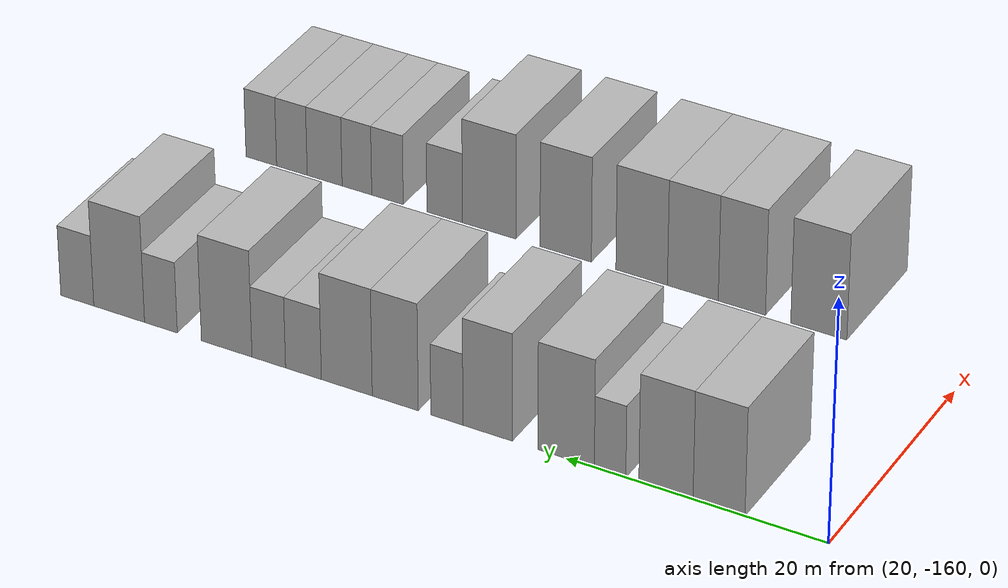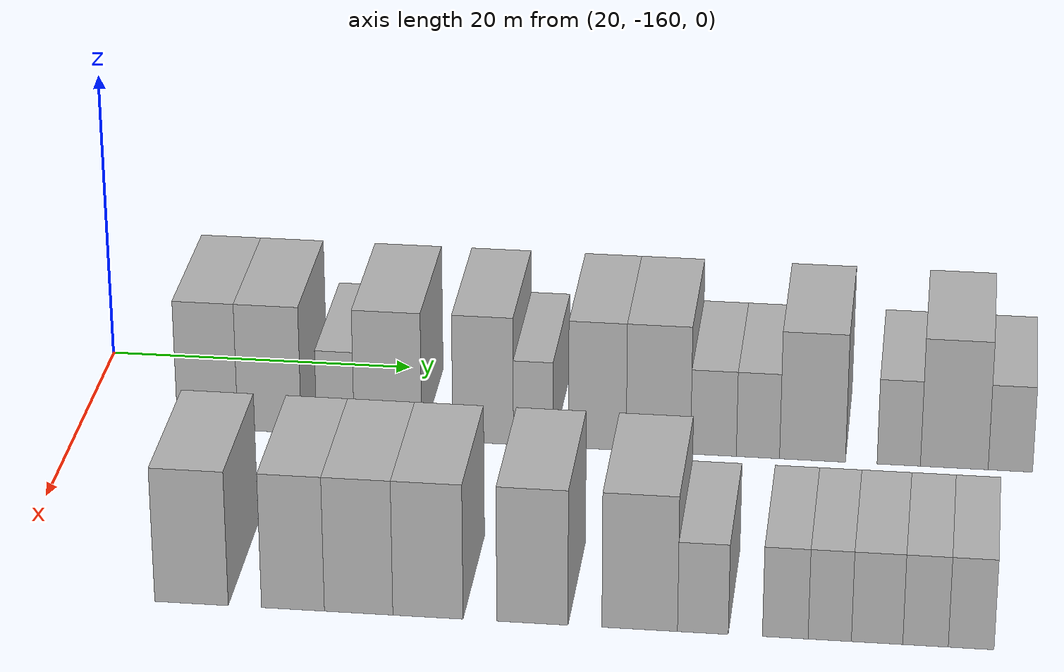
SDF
<sdf version="1.6">
 <world name="default">
  <model name="building_14">
   <static>1</static>
   <pose>25.0000 -151.7200 0 0.000000 0.000000 0.000000</pose>
   <link name="link">
    <pose>0 0 4.50 0 0 0</pose>
    <collision name="collision"><geometry><box><size>10.0000 3.9417 9.0000</size></box></geometry></collision>
    <visual name="visual">
     <cast_shadows>0</cast_shadows>
     <geometry><box><size>10.0000 3.9417 9.0000</size></box></geometry>
     <material>
      <script>
       <uri>model://HANNAS_wall/materials/scripts</uri>
       <uri>model://HANNAS_wall/materials/textures</uri>
       <name>vrc/HANNAS_wall</name>
      </script>
     </material>
    </visual>
   </link>
  </model>
  <model name="building_15">
   <static>1</static>
   <pose>25.0000 -147.6774 0 0.000000 0.000000 0.000000</pose>
   <link name="link">
    <pose>0 0 4.50 0 0 0</pose>
    <collision name="collision"><geometry><box><size>10.0000 4.1435 9.0000</size></box></geometry></collision>
    <visual name="visual">
     <cast_shadows>0</cast_shadows>
     <geometry><box><size>10.0000 4.1435 9.0000</size></box></geometry>
     <material>
      <script>
       <uri>model://HANNAS_wall/materials/scripts</uri>
       <uri>model://HANNAS_wall/materials/textures</uri>
       <name>vrc/HANNAS_wall</name>
      </script>
     </material>
    </visual>
   </link>
  </model>
  <model name="building_16">
   <static>1</static>
   <pose>25.0000 -143.3900 0 0.000000 0.000000 0.000000</pose>
   <link name="link">
    <pose>0 0 3.00 0 0 0</pose>
    <collision name="collision"><geometry><box><size>10.0000 2.4312 6.0000</size></box></geometry></collision>
    <visual name="visual">
     <cast_shadows>0</cast_shadows>
     <geometry><box><size>10.0000 2.4312 6.0000</size></box></geometry>
     <material>
      <script>
       <uri>model://HANNAS_wall/materials/scripts</uri>
       <uri>model://HANNAS_wall/materials/textures</uri>
       <name>vrc/HANNAS_wall</name>
      </script>
     </material>
    </visual>
   </link>
  </model>
  <model name="building_17">
   <static>1</static>
   <pose>25.0000 -139.9825 0 0.000000 0.000000 0.000000</pose>
   <link name="link">
    <pose>0 0 4.50 0 0 0</pose>
    <collision name="collision"><geometry><box><size>10.0000 4.3837 9.0000</size></box></geometry></collision>
    <visual name="visual">
     <cast_shadows>0</cast_shadows>
     <geometry><box><size>10.0000 4.3837 9.0000</size></box></geometry>
     <material>
      <script>
       <uri>model://HANNAS_wall/materials/scripts</uri>
       <uri>model://HANNAS_wall/materials/textures</uri>
       <name>vrc/HANNAS_wall</name>
      </script>
     </material>
    </visual>
   </link>
  </model>
  <model name="building_18">
   <static>1</static>
   <pose>25.0000 -133.8397 0 0.000000 0.000000 0.000000</pose>
   <link name="link">
    <pose>0 0 4.50 0 0 0</pose>
    <collision name="collision"><geometry><box><size>10.0000 3.9020 9.0000</size></box></geometry></collision>
    <visual name="visual">
     <cast_shadows>0</cast_shadows>
     <geometry><box><size>10.0000 3.9020 9.0000</size></box></geometry>
     <material>
      <script>
       <uri>model://HANNAS_wall/materials/scripts</uri>
       <uri>model://HANNAS_wall/materials/textures</uri>
       <name>vrc/HANNAS_wall</name>
      </script>
     </material>
    </visual>
   </link>
  </model>
  <model name="building_19">
   <static>1</static>
   <pose>25.0000 -130.6132 0 0.000000 0.000000 0.000000</pose>
   <link name="link">
    <pose>0 0 3.00 0 0 0</pose>
    <collision name="collision"><geometry><box><size>10.0000 2.5512 6.0000</size></box></geometry></collision>
    <visual name="visual">
     <cast_shadows>0</cast_shadows>
     <geometry><box><size>10.0000 2.5512 6.0000</size></box></geometry>
     <material>
      <script>
       <uri>model://HANNAS_wall/materials/scripts</uri>
       <uri>model://HANNAS_wall/materials/textures</uri>
       <name>vrc/HANNAS_wall</name>
      </script>
     </material>
    </visual>
   </link>
  </model>
  <model name="building_20">
   <static>1</static>
   <pose>25.0000 -126.4945 0 0.000000 0.000000 0.000000</pose>
   <link name="link">
    <pose>0 0 4.50 0 0 0</pose>
    <collision name="collision"><geometry><box><size>10.0000 3.6862 9.0000</size></box></geometry></collision>
    <visual name="visual">
     <cast_shadows>0</cast_shadows>
     <geometry><box><size>10.0000 3.6862 9.0000</size></box></geometry>
     <material>
      <script>
       <uri>model://HANNAS_wall/materials/scripts</uri>
       <uri>model://HANNAS_wall/materials/textures</uri>
       <name>vrc/HANNAS_wall</name>
      </script>
     </material>
    </visual>
   </link>
  </model>
  <model name="building_21">
   <static>1</static>
   <pose>25.0000 -122.5954 0 0.000000 0.000000 0.000000</pose>
   <link name="link">
    <pose>0 0 4.50 0 0 0</pose>
    <collision name="collision"><geometry><box><size>10.0000 4.1119 9.0000</size></box></geometry></collision>
    <visual name="visual">
     <cast_shadows>0</cast_shadows>
     <geometry><box><size>10.0000 4.1119 9.0000</size></box></geometry>
     <material>
      <script>
       <uri>model://HANNAS_wall/materials/scripts</uri>
       <uri>model://HANNAS_wall/materials/textures</uri>
       <name>vrc/HANNAS_wall</name>
      </script>
     </material>
    </visual>
   </link>
  </model>
  <model name="building_22">
   <static>1</static>
   <pose>25.0000 -119.0821 0 0.000000 0.000000 0.000000</pose>
   <link name="link">
    <pose>0 0 3.00 0 0 0</pose>
    <collision name="collision"><geometry><box><size>10.0000 2.9146 6.0000</size></box></geometry></collision>
    <visual name="visual">
     <cast_shadows>0</cast_shadows>
     <geometry><box><size>10.0000 2.9146 6.0000</size></box></geometry>
     <material>
      <script>
       <uri>model://HANNAS_wall/materials/scripts</uri>
       <uri>model://HANNAS_wall/materials/textures</uri>
       <name>vrc/HANNAS_wall</name>
      </script>
     </material>
    </visual>
   </link>
  </model>
  <model name="building_23">
   <static>1</static>
   <pose>25.0000 -116.2512 0 0.000000 0.000000 0.000000</pose>
   <link name="link">
    <pose>0 0 3.00 0 0 0</pose>
    <collision name="collision"><geometry><box><size>10.0000 2.7474 6.0000</size></box></geometry></collision>
    <visual name="visual">
     <cast_shadows>0</cast_shadows>
     <geometry><box><size>10.0000 2.7474 6.0000</size></box></geometry>
     <material>
      <script>
       <uri>model://HANNAS_wall/materials/scripts</uri>
       <uri>model://HANNAS_wall/materials/textures</uri>
       <name>vrc/HANNAS_wall</name>
      </script>
     </material>
    </visual>
   </link>
  </model>
  <model name="building_24">
   <static>1</static>
   <pose>25.0000 -112.7890 0 0.000000 0.000000 0.000000</pose>
   <link name="link">
    <pose>0 0 4.50 0 0 0</pose>
    <collision name="collision"><geometry><box><size>10.0000 4.1770 9.0000</size></box></geometry></collision>
    <visual name="visual">
     <cast_shadows>0</cast_shadows>
     <geometry><box><size>10.0000 4.1770 9.0000</size></box></geometry>
     <material>
      <script>
       <uri>model://HANNAS_wall/materials/scripts</uri>
       <uri>model://HANNAS_wall/materials/textures</uri>
       <name>vrc/HANNAS_wall</name>
      </script>
     </material>
    </visual>
   </link>
  </model>
  <model name="building_25">
   <static>1</static>
   <pose>25.0000 -107.3323 0 0.000000 0.000000 0.000000</pose>
   <link name="link">
    <pose>0 0 3.00 0 0 0</pose>
    <collision name="collision"><geometry><box><size>10.0000 2.7364 6.0000</size></box></geometry></collision>
    <visual name="visual">
     <cast_shadows>0</cast_shadows>
     <geometry><box><size>10.0000 2.7364 6.0000</size></box></geometry>
     <material>
      <script>
       <uri>model://HANNAS_wall/materials/scripts</uri>
       <uri>model://HANNAS_wall/materials/textures</uri>
       <name>vrc/HANNAS_wall</name>
      </script>
     </material>
    </visual>
   </link>
  </model>
  <model name="building_26">
   <static>1</static>
   <pose>25.0000 -103.8327 0 0.000000 0.000000 0.000000</pose>
   <link name="link">
    <pose>0 0 4.50 0 0 0</pose>
    <collision name="collision"><geometry><box><size>10.0000 4.2629 9.0000</size></box></geometry></collision>
    <visual name="visual">
     <cast_shadows>0</cast_shadows>
     <geometry><box><size>10.0000 4.2629 9.0000</size></box></geometry>
     <material>
      <script>
       <uri>model://HANNAS_wall/materials/scripts</uri>
       <uri>model://HANNAS_wall/materials/textures</uri>
       <name>vrc/HANNAS_wall</name>
      </script>
     </material>
    </visual>
   </link>
  </model>
  <model name="building_27">
   <static>1</static>
   <pose>25.0000 -100.3072 0 0.000000 0.000000 0.000000</pose>
   <link name="link">
    <pose>0 0 3.00 0 0 0</pose>
    <collision name="collision"><geometry><box><size>10.0000 2.7880 6.0000</size></box></geometry></collision>
    <visual name="visual">
     <cast_shadows>0</cast_shadows>
     <geometry><box><size>10.0000 2.7880 6.0000</size></box></geometry>
     <material>
      <script>
       <uri>model://HANNAS_wall/materials/scripts</uri>
       <uri>model://HANNAS_wall/materials/textures</uri>
       <name>vrc/HANNAS_wall</name>
      </script>
     </material>
    </visual>
   </link>
  </model>
  <model name="building_116">
   <static>1</static>
   <pose>47.0000 -148.4805 0 0.000000 0.000000 0.000000</pose>
   <link name="link">
    <pose>0 0 4.50 0 0 0</pose>
    <collision name="collision"><geometry><box><size>10.0000 4.4251 9.0000</size></box></geometry></collision>
    <visual name="visual">
     <cast_shadows>0</cast_shadows>
     <geometry><box><size>10.0000 4.4251 9.0000</size></box></geometry>
     <material>
      <script>
       <uri>model://HANNAS_wall/materials/scripts</uri>
       <uri>model://HANNAS_wall/materials/textures</uri>
       <name>vrc/HANNAS_wall</name>
      </script>
     </material>
    </visual>
   </link>
  </model>
  <model name="building_117">
   <static>1</static>
   <pose>47.0000 -142.3823 0 0.000000 0.000000 0.000000</pose>
   <link name="link">
    <pose>0 0 4.50 0 0 0</pose>
    <collision name="collision"><geometry><box><size>10.0000 3.7714 9.0000</size></box></geometry></collision>
    <visual name="visual">
     <cast_shadows>0</cast_shadows>
     <geometry><box><size>10.0000 3.7714 9.0000</size></box></geometry>
     <material>
      <script>
       <uri>model://HANNAS_wall/materials/scripts</uri>
       <uri>model://HANNAS_wall/materials/textures</uri>
       <name>vrc/HANNAS_wall</name>
      </script>
     </material>
    </visual>
   </link>
  </model>
  <model name="building_118">
   <static>1</static>
   <pose>47.0000 -138.4520 0 0.000000 0.000000 0.000000</pose>
   <link name="link">
    <pose>0 0 4.50 0 0 0</pose>
    <collision name="collision"><geometry><box><size>10.0000 4.0891 9.0000</size></box></geometry></collision>
    <visual name="visual">
     <cast_shadows>0</cast_shadows>
     <geometry><box><size>10.0000 4.0891 9.0000</size></box></geometry>
     <material>
      <script>
       <uri>model://HANNAS_wall/materials/scripts</uri>
       <uri>model://HANNAS_wall/materials/textures</uri>
       <name>vrc/HANNAS_wall</name>
      </script>
     </material>
    </visual>
   </link>
  </model>
  <model name="building_119">
   <static>1</static>
   <pose>47.0000 -134.3163 0 0.000000 0.000000 0.000000</pose>
   <link name="link">
    <pose>0 0 4.50 0 0 0</pose>
    <collision name="collision"><geometry><box><size>10.0000 4.1824 9.0000</size></box></geometry></collision>
    <visual name="visual">
     <cast_shadows>0</cast_shadows>
     <geometry><box><size>10.0000 4.1824 9.0000</size></box></geometry>
     <material>
      <script>
       <uri>model://HANNAS_wall/materials/scripts</uri>
       <uri>model://HANNAS_wall/materials/textures</uri>
       <name>vrc/HANNAS_wall</name>
      </script>
     </material>
    </visual>
   </link>
  </model>
  <model name="building_120">
   <static>1</static>
   <pose>47.0000 -128.1151 0 0.000000 0.000000 0.000000</pose>
   <link name="link">
    <pose>0 0 4.50 0 0 0</pose>
    <collision name="collision"><geometry><box><size>10.0000 4.2199 9.0000</size></box></geometry></collision>
    <visual name="visual">
     <cast_shadows>0</cast_shadows>
     <geometry><box><size>10.0000 4.2199 9.0000</size></box></geometry>
     <material>
      <script>
       <uri>model://HANNAS_wall/materials/scripts</uri>
       <uri>model://HANNAS_wall/materials/textures</uri>
       <name>vrc/HANNAS_wall</name>
      </script>
     </material>
    </visual>
   </link>
  </model>
  <model name="building_121">
   <static>1</static>
   <pose>47.0000 -121.7799 0 0.000000 0.000000 0.000000</pose>
   <link name="link">
    <pose>0 0 4.50 0 0 0</pose>
    <collision name="collision"><geometry><box><size>10.0000 4.4505 9.0000</size></box></geometry></collision>
    <visual name="visual">
     <cast_shadows>0</cast_shadows>
     <geometry><box><size>10.0000 4.4505 9.0000</size></box></geometry>
     <material>
      <script>
       <uri>model://HANNAS_wall/materials/scripts</uri>
       <uri>model://HANNAS_wall/materials/textures</uri>
       <name>vrc/HANNAS_wall</name>
      </script>
     </material>
    </visual>
   </link>
  </model>
  <model name="building_122">
   <static>1</static>
   <pose>47.0000 -118.0635 0 0.000000 0.000000 0.000000</pose>
   <link name="link">
    <pose>0 0 3.00 0 0 0</pose>
    <collision name="collision"><geometry><box><size>10.0000 2.9823 6.0000</size></box></geometry></collision>
    <visual name="visual">
     <cast_shadows>0</cast_shadows>
     <geometry><box><size>10.0000 2.9823 6.0000</size></box></geometry>
     <material>
      <script>
       <uri>model://HANNAS_wall/materials/scripts</uri>
       <uri>model://HANNAS_wall/materials/textures</uri>
       <name>vrc/HANNAS_wall</name>
      </script>
     </material>
    </visual>
   </link>
  </model>
  <model name="building_123">
   <static>1</static>
   <pose>47.0000 -113.2379 0 0.000000 0.000000 0.000000</pose>
   <link name="link">
    <pose>0 0 3.00 0 0 0</pose>
    <collision name="collision"><geometry><box><size>10.0000 2.6688 6.0000</size></box></geometry></collision>
    <visual name="visual">
     <cast_shadows>0</cast_shadows>
     <geometry><box><size>10.0000 2.6688 6.0000</size></box></geometry>
     <material>
      <script>
       <uri>model://HANNAS_wall/materials/scripts</uri>
       <uri>model://HANNAS_wall/materials/textures</uri>
       <name>vrc/HANNAS_wall</name>
      </script>
     </material>
    </visual>
   </link>
  </model>
  <model name="building_124">
   <static>1</static>
   <pose>47.0000 -110.6400 0 0.000000 0.000000 0.000000</pose>
   <link name="link">
    <pose>0 0 3.00 0 0 0</pose>
    <collision name="collision"><geometry><box><size>10.0000 2.5270 6.0000</size></box></geometry></collision>
    <visual name="visual">
     <cast_shadows>0</cast_shadows>
     <geometry><box><size>10.0000 2.5270 6.0000</size></box></geometry>
     <material>
      <script>
       <uri>model://HANNAS_wall/materials/scripts</uri>
       <uri>model://HANNAS_wall/materials/textures</uri>
       <name>vrc/HANNAS_wall</name>
      </script>
     </material>
    </visual>
   </link>
  </model>
  <model name="building_125">
   <static>1</static>
   <pose>47.0000 -107.8819 0 0.000000 0.000000 0.000000</pose>
   <link name="link">
    <pose>0 0 3.00 0 0 0</pose>
    <collision name="collision"><geometry><box><size>10.0000 2.9890 6.0000</size></box></geometry></collision>
    <visual name="visual">
     <cast_shadows>0</cast_shadows>
     <geometry><box><size>10.0000 2.9890 6.0000</size></box></geometry>
     <material>
      <script>
       <uri>model://HANNAS_wall/materials/scripts</uri>
       <uri>model://HANNAS_wall/materials/textures</uri>
       <name>vrc/HANNAS_wall</name>
      </script>
     </material>
    </visual>
   </link>
  </model>
  <model name="building_126">
   <static>1</static>
   <pose>47.0000 -105.0671 0 0.000000 0.000000 0.000000</pose>
   <link name="link">
    <pose>0 0 3.00 0 0 0</pose>
    <collision name="collision"><geometry><box><size>10.0000 2.6407 6.0000</size></box></geometry></collision>
    <visual name="visual">
     <cast_shadows>0</cast_shadows>
     <geometry><box><size>10.0000 2.6407 6.0000</size></box></geometry>
     <material>
      <script>
       <uri>model://HANNAS_wall/materials/scripts</uri>
       <uri>model://HANNAS_wall/materials/textures</uri>
       <name>vrc/HANNAS_wall</name>
      </script>
     </material>
    </visual>
   </link>
  </model>
  <model name="building_127">
   <static>1</static>
   <pose>47.0000 -102.4216 0 0.000000 0.000000 0.000000</pose>
   <link name="link">
    <pose>0 0 3.00 0 0 0</pose>
    <collision name="collision"><geometry><box><size>10.0000 2.6502 6.0000</size></box></geometry></collision>
    <visual name="visual">
     <cast_shadows>0</cast_shadows>
     <geometry><box><size>10.0000 2.6502 6.0000</size></box></geometry>
     <material>
      <script>
       <uri>model://HANNAS_wall/materials/scripts</uri>
       <uri>model://HANNAS_wall/materials/textures</uri>
       <name>vrc/HANNAS_wall</name>
      </script>
     </material>
    </visual>
   </link>
  </model>
 </world>
</sdf>
